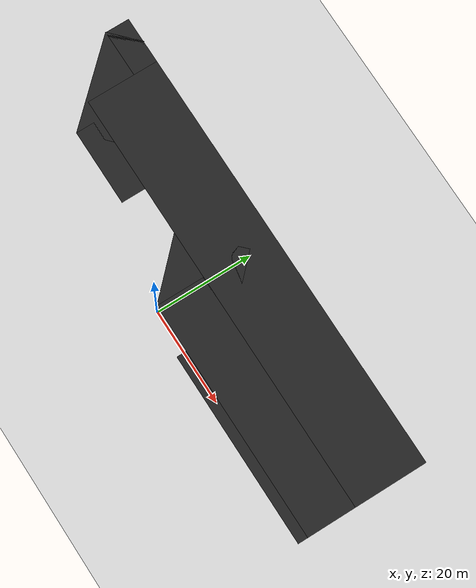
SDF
<sdf version="1.6">
 <world name="default">
  <model name="ground_plane">
   <static>1</static>
   <link name="link">
    <collision name="collision">
     <geometry><plane><normal>0 0 1</normal><size>100 100</size></plane></geometry>
     <surface><friction><ode><mu>100</mu><mu2>50</mu2></ode></friction></surface>
    </collision>
    <visual name="visual">
     <cast_shadows>0</cast_shadows>
     <geometry><plane><normal>0 0 1</normal><size>100 100</size></plane></geometry>
     <material>
      <script><uri>file://media/materials/scripts/gazebo.material</uri><name>Gazebo/Grey</name></script>
     </material>
    </visual>
   </link>
  </model>
  <model name="pillar_clone_6_clone_15">
   <link name="link_0">
    <inertial>
     <mass>1</mass>
     <inertia>
      <ixx>0.166667</ixx>
      <ixy>0</ixy>
      <ixz>0</ixz>
      <iyy>0.166667</iyy>
      <iyz>0</iyz>
      <izz>0.166667</izz>
     </inertia>
    </inertial>
    <kinematic>1</kinematic>
    <visual name="visual">
     <geometry><box><size>1 1 4</size></box></geometry>
     <material>
      <lighting>1</lighting>
      <script><uri>file://media/materials/scripts/gazebo.material</uri><name>Gazebo/Grey</name></script>
      <shader type="pixel"><normal_map>__default__</normal_map></shader>
      <ambient>0.3 0.3 0.3 1</ambient>
      <diffuse>0.7 0.7 0.7 1</diffuse>
      <specular>0.01 0.01 0.01 1</specular>
      <emissive>0 0 0 1</emissive>
     </material>
    </visual>
    <collision name="collision">
     <geometry><box><size>1 1 4</size></box></geometry>
     <surface>
      <friction>
       <ode><mu>1</mu><mu2>1</mu2><fdir1>0 0 0</fdir1><slip1>0</slip1><slip2>0</slip2></ode>
       <torsional>
        <coefficient>1</coefficient>
        <patch_radius>0</patch_radius>
        <surface_radius>0</surface_radius>
        <use_patch_radius>1</use_patch_radius>
        <ode><slip>0</slip></ode>
       </torsional>
      </friction>
      <bounce><restitution_coefficient>0</restitution_coefficient><threshold>1e+06</threshold></bounce>
      <contact>
       <collide_without_contact>0</collide_without_contact>
       <collide_without_contact_bitmask>1</collide_without_contact_bitmask>
       <collide_bitmask>1</collide_bitmask>
       <ode>
        <soft_cfm>0</soft_cfm>
        <soft_erp>0.2</soft_erp>
        <kp>1e+13</kp>
        <kd>1</kd>
        <max_vel>0.01</max_vel>
        <min_depth>0</min_depth>
       </ode>
       <bullet>
        <split_impulse>1</split_impulse>
        <split_impulse_penetration_threshold>-0.01</split_impulse_penetration_threshold>
        <soft_cfm>0</soft_cfm>
        <soft_erp>0.2</soft_erp>
        <kp>1e+13</kp>
        <kd>1</kd>
       </bullet>
      </contact>
     </surface>
    </collision>
   </link>
   <link name="link_1">
    <inertial>
     <mass>1</mass>
     <inertia><ixx>0.145833</ixx><ixy>0</ixy><ixz>0</ixz><iyy>0.145833</iyy><iyz>0</iyz><izz>0.125</izz></inertia>
    </inertial>
    <pose>-0.5 0 0 0 -0 0</pose>
    <kinematic>1</kinematic>
    <visual name="visual">
     <geometry><cylinder><radius>0.5</radius><length>4</length></cylinder></geometry>
     <material>
      <lighting>1</lighting>
      <script><uri>file://media/materials/scripts/gazebo.material</uri><name>Gazebo/Grey</name></script>
      <shader type="pixel"><normal_map>__default__</normal_map></shader>
      <ambient>0.3 0.3 0.3 1</ambient>
      <diffuse>0.7 0.7 0.7 1</diffuse>
      <specular>0.01 0.01 0.01 1</specular>
      <emissive>0 0 0 1</emissive>
     </material>
    </visual>
    <collision name="collision">
     <geometry><cylinder><radius>0.5</radius><length>4</length></cylinder></geometry>
     <surface>
      <friction>
       <ode><mu>1</mu><mu2>1</mu2><fdir1>0 0 0</fdir1><slip1>0</slip1><slip2>0</slip2></ode>
       <torsional>
        <coefficient>1</coefficient>
        <patch_radius>0</patch_radius>
        <surface_radius>0</surface_radius>
        <use_patch_radius>1</use_patch_radius>
        <ode><slip>0</slip></ode>
       </torsional>
      </friction>
      <bounce><restitution_coefficient>0</restitution_coefficient><threshold>1e+06</threshold></bounce>
      <contact>
       <collide_without_contact>0</collide_without_contact>
       <collide_without_contact_bitmask>1</collide_without_contact_bitmask>
       <collide_bitmask>1</collide_bitmask>
       <ode>
        <soft_cfm>0</soft_cfm>
        <soft_erp>0.2</soft_erp>
        <kp>1e+13</kp>
        <kd>1</kd>
        <max_vel>0.01</max_vel>
        <min_depth>0</min_depth>
       </ode>
       <bullet>
        <split_impulse>1</split_impulse>
        <split_impulse_penetration_threshold>-0.01</split_impulse_penetration_threshold>
        <soft_cfm>0</soft_cfm>
        <soft_erp>0.2</soft_erp>
        <kp>1e+13</kp>
        <kd>1</kd>
       </bullet>
      </contact>
     </surface>
    </collision>
   </link>
   <link name="link_2">
    <inertial>
     <mass>1</mass>
     <inertia><ixx>0.145833</ixx><ixy>0</ixy><ixz>0</ixz><iyy>0.145833</iyy><iyz>0</iyz><izz>0.125</izz></inertia>
    </inertial>
    <pose>0.5 0 0 0 -0 0</pose>
    <kinematic>1</kinematic>
    <visual name="visual">
     <geometry><cylinder><radius>0.5</radius><length>4</length></cylinder></geometry>
     <material>
      <lighting>1</lighting>
      <script><uri>file://media/materials/scripts/gazebo.material</uri><name>Gazebo/Grey</name></script>
      <shader type="pixel"><normal_map>__default__</normal_map></shader>
      <ambient>0.3 0.3 0.3 1</ambient>
      <diffuse>0.7 0.7 0.7 1</diffuse>
      <specular>0.01 0.01 0.01 1</specular>
      <emissive>0 0 0 1</emissive>
     </material>
    </visual>
    <collision name="collision">
     <geometry><cylinder><radius>0.5</radius><length>4</length></cylinder></geometry>
     <surface>
      <friction>
       <ode><mu>1</mu><mu2>1</mu2><fdir1>0 0 0</fdir1><slip1>0</slip1><slip2>0</slip2></ode>
       <torsional>
        <coefficient>1</coefficient>
        <patch_radius>0</patch_radius>
        <surface_radius>0</surface_radius>
        <use_patch_radius>1</use_patch_radius>
        <ode><slip>0</slip></ode>
       </torsional>
      </friction>
      <bounce><restitution_coefficient>0</restitution_coefficient><threshold>1e+06</threshold></bounce>
      <contact>
       <collide_without_contact>0</collide_without_contact>
       <collide_without_contact_bitmask>1</collide_without_contact_bitmask>
       <collide_bitmask>1</collide_bitmask>
       <ode>
        <soft_cfm>0</soft_cfm>
        <soft_erp>0.2</soft_erp>
        <kp>1e+13</kp>
        <kd>1</kd>
        <max_vel>0.01</max_vel>
        <min_depth>0</min_depth>
       </ode>
       <bullet>
        <split_impulse>1</split_impulse>
        <split_impulse_penetration_threshold>-0.01</split_impulse_penetration_threshold>
        <soft_cfm>0</soft_cfm>
        <soft_erp>0.2</soft_erp>
        <kp>1e+13</kp>
        <kd>1</kd>
       </bullet>
      </contact>
     </surface>
    </collision>
   </link>
   <static>1</static>
   <pose>-10 13 2 0 -0 0</pose>
  </model>
  <model name="ceiling_2">
   <link name="link_13">
    <pose>-36.0977 3.57608 0 0 -0 0.754854</pose>
    <gravity>0</gravity>
    <visual name="visual">
     <geometry><box><size>7.5 20.6 0.01</size></box></geometry>
     <material>
      <lighting>1</lighting>
      <script><uri>file://media/materials/scripts/gazebo.material</uri><name>Gazebo/FlatBlack</name></script>
      <shader type="pixel"><normal_map>__default__</normal_map></shader>
     </material>
    </visual>
   </link>
   <link name="link_14">
    <pose>9.21953 5.98478 0 0 -0 0</pose>
    <gravity>0</gravity>
    <visual name="visual">
     <geometry><box><size>90 15 0.01</size></box></geometry>
     <material>
      <lighting>1</lighting>
      <script><uri>file://media/materials/scripts/gazebo.material</uri><name>Gazebo/FlatBlack</name></script>
      <shader type="pixel"><normal_map>__default__</normal_map></shader>
     </material>
    </visual>
   </link>
   <link name="link_15">
    <pose>-40.7805 10.9848 0 0 -0 0</pose>
    <gravity>0</gravity>
    <visual name="visual">
     <geometry><box><size>10 5 0.01</size></box></geometry>
     <material>
      <lighting>1</lighting>
      <script><uri>file://media/materials/scripts/gazebo.material</uri><name>Gazebo/FlatBlack</name></script>
      <shader type="pixel"><normal_map>__default__</normal_map></shader>
     </material>
    </visual>
   </link>
   <link name="link_16">
    <pose>29.2195 -6.51522 0 0 -0 0</pose>
    <gravity>0</gravity>
    <visual name="visual">
     <geometry><box><size>50 10 0.01</size></box></geometry>
     <material>
      <lighting>1</lighting>
      <script><uri>file://media/materials/scripts/gazebo.material</uri><name>Gazebo/FlatBlack</name></script>
      <shader type="pixel"><normal_map>__default__</normal_map></shader>
     </material>
    </visual>
   </link>
   <link name="link_17">
    <pose>34.2195 -12.5152 0 0 -0 0</pose>
    <gravity>0</gravity>
    <visual name="visual">
     <geometry><box><size>40 2 0.01</size></box></geometry>
     <material>
      <lighting>1</lighting>
      <script><uri>file://media/materials/scripts/gazebo.material</uri><name>Gazebo/FlatBlack</name></script>
      <shader type="pixel"><normal_map>__default__</normal_map></shader>
     </material>
    </visual>
   </link>
   <link name="link_18">
    <pose>4.21953 -1.51522 0 0 -0 0.7854</pose>
    <gravity>0</gravity>
    <visual name="visual">
     <geometry><box><size>14.14 14.14 0.01</size></box></geometry>
     <material>
      <lighting>1</lighting>
      <script><uri>file://media/materials/scripts/gazebo.material</uri><name>Gazebo/FlatBlack</name></script>
      <shader type="pixel"><normal_map>__default__</normal_map></shader>
     </material>
    </visual>
   </link>
   <link name="link_19">
    <pose>-23.75 -4 0 0 -0 0</pose>
    <gravity>0</gravity>
    <visual name="visual">
     <geometry><box><size>16 5 0.01</size></box></geometry>
     <material>
      <lighting>1</lighting>
      <script><uri>file://media/materials/scripts/gazebo.material</uri><name>Gazebo/FlatBlack</name></script>
      <shader type="pixel"><normal_map>__default__</normal_map></shader>
     </material>
    </visual>
   </link>
   <static>1</static>
   <pose>-4.357 11.5988 4 0 -0 0</pose>
  </model>
 </world>
</sdf>
